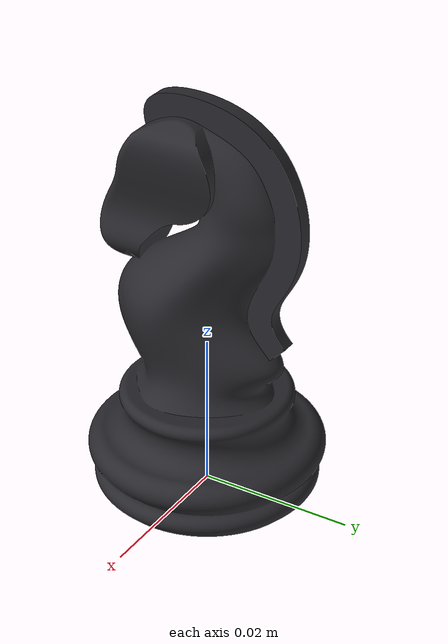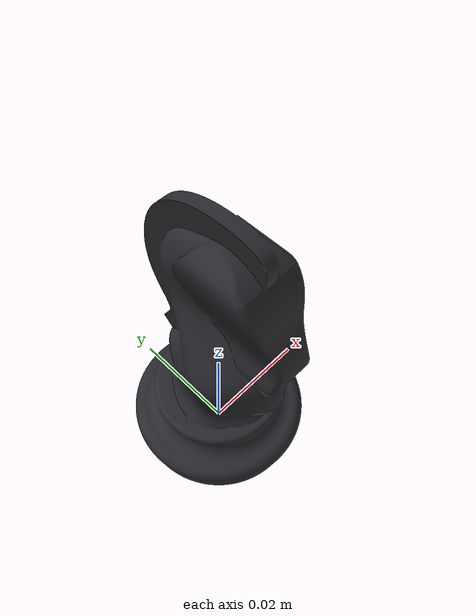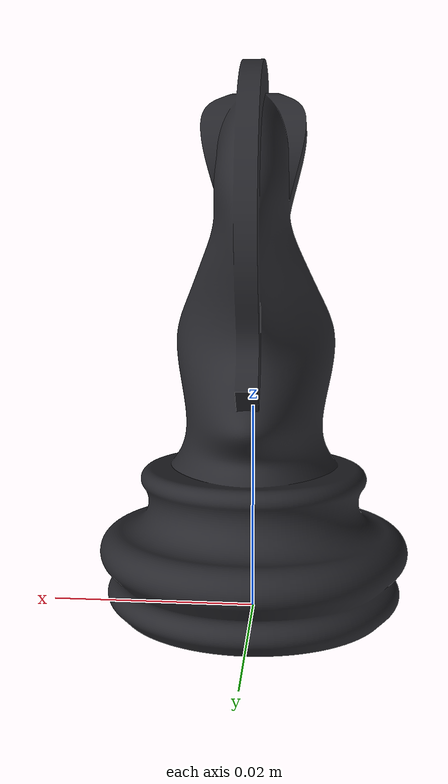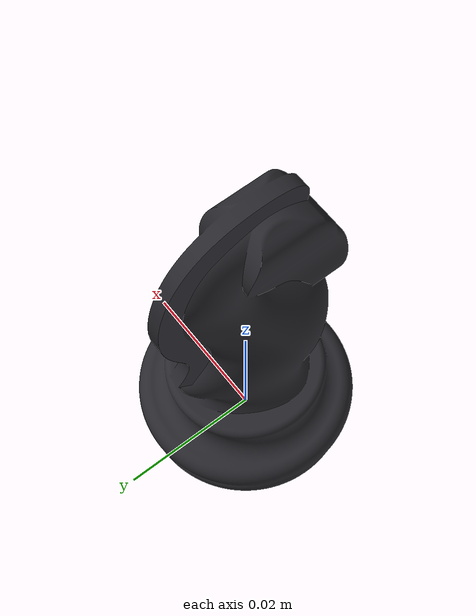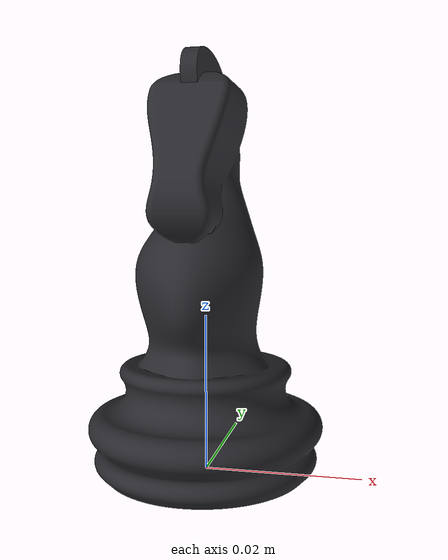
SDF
<?xml version="1.0"?>
<sdf version="1.9">
  <model name="black_knight">
    <static>false</static>
    <link name="piece">
      <inertial>
        <mass>0.050</mass>
        <inertia>
          <ixx>0.000016</ixx>
          <iyy>0.000016</iyy>
          <izz>0.000010</izz>
        </inertia>
      </inertial>
      <collision name="collision">
        <pose>0 0 0.0265 0 0 0</pose>
        <geometry>
          <box>
            <size>0.030 0.028 0.053</size>
          </box>
        </geometry>
      </collision>
      <visual name="visual">
        <geometry>
          <mesh>
            <uri>model://chess_piece_meshes/meshes/knight.stl</uri>
            <scale>0.001 0.001 0.001</scale>
          </mesh>
        </geometry>
        <material>
          <ambient>0.16 0.16 0.18 1</ambient>
          <diffuse>0.16 0.16 0.18 1</diffuse>
          <specular>0.08 0.08 0.08 1</specular>
        </material>
      </visual>
    </link>
  </model>
</sdf>
